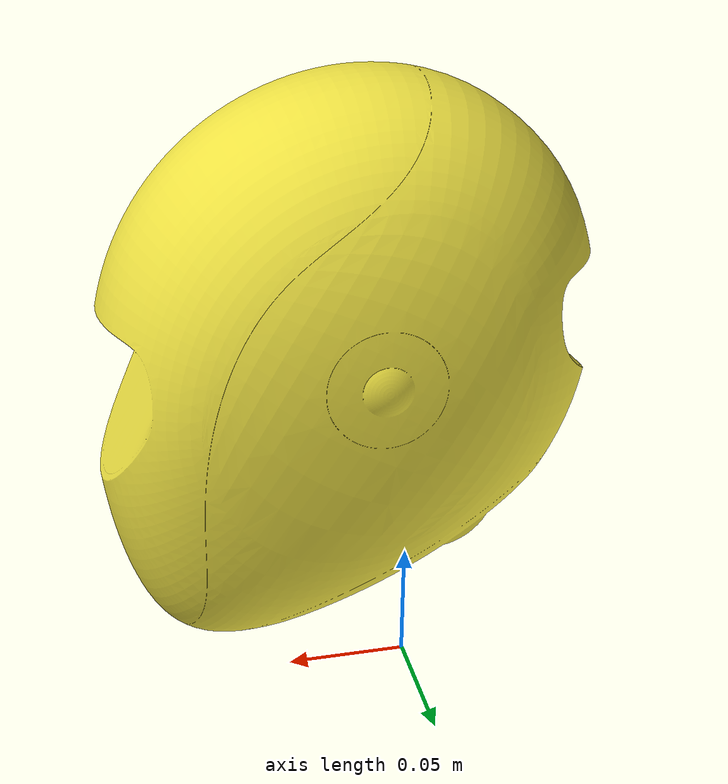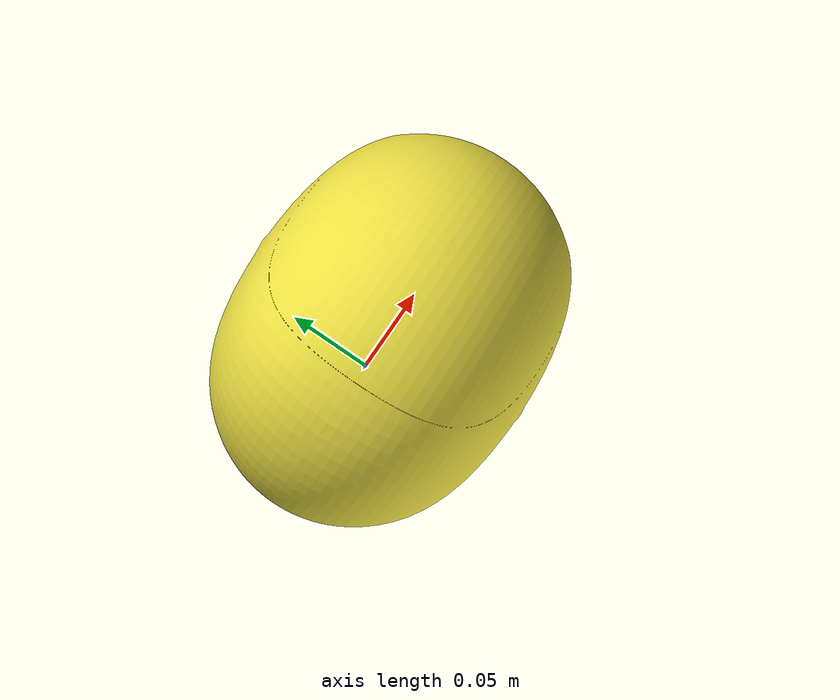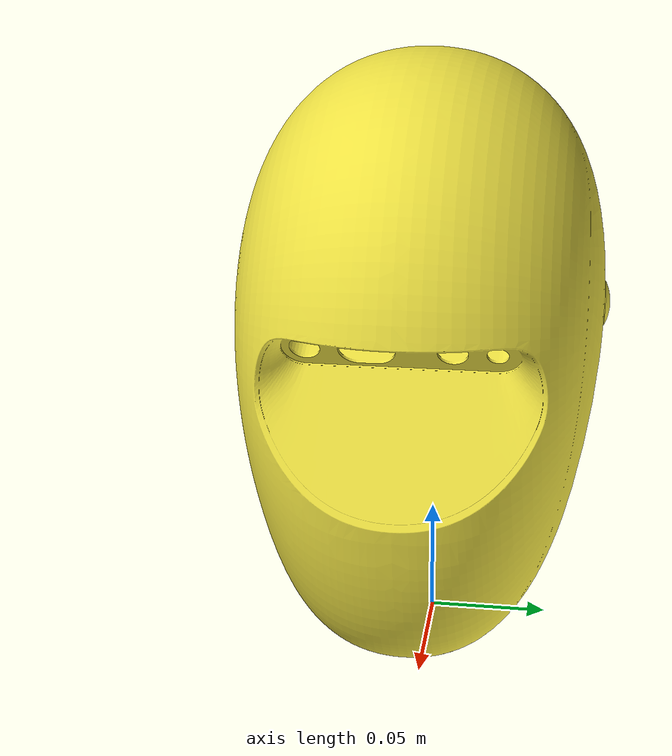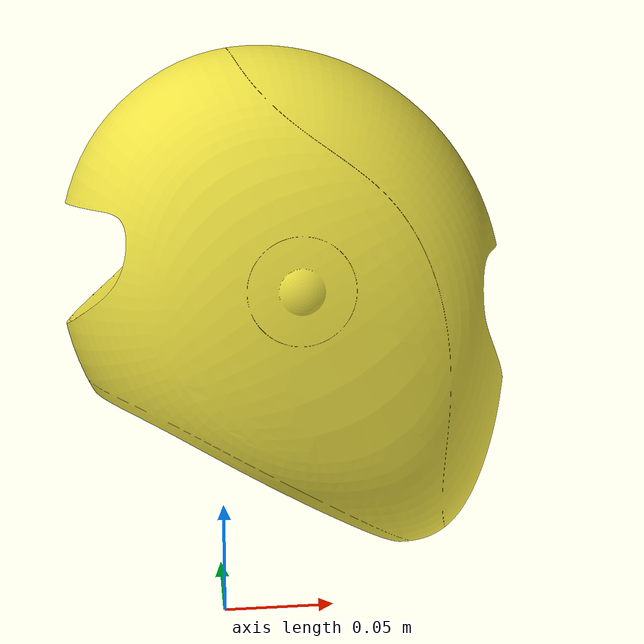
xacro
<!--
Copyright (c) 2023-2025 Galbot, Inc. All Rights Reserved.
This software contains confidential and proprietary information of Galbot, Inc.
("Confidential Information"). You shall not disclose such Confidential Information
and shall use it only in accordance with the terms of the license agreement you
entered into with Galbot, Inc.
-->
<?xml version="1.0"?>
<robot name="head"
    xmlns:xacro="http://ros.org/wiki/xacro">
    <!-- Include-->
    <xacro:include filename="$(find galbot_one_charlie_description)/xacro/head/head.xacro" />
    <!-- Properties -->
    <xacro:property name="M_PI" value="3.1415926535897931" />
    <!-- Parent link -->
    <link name="base_link" />
    <xacro:head parent="base_link" name="head">
        <origin xyz="0 0 0.1" rpy="0 0 0" />
    </xacro:head>
</robot>

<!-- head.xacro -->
<robot xmlns:xacro="http://ros.org/wiki/xacro" name="head">
    <xacro:macro name="head" params="parent *origin name:=head">
        <xacro:property name="M_PI" value="3.1415926535897931" />

        <joint name="${name}_joint" type="fixed">
            <xacro:insert_block name="origin" />
            <parent link="${parent}" />
            <child link="${name}_base_link" />
        </joint>

        <link name="${name}_base_link">
            <inertial>
                <origin xyz="0 0 0" rpy="0 0 0" />
                <mass value="0" />
                <inertia ixx="0" ixy="0" ixz="0" iyy="0" iyz="0" izz="0" />
            </inertial>
        </link>

        <link name="${name}_link1">
            <inertial>
                <origin rpy="0 0 0" xyz="0.00000 0.00004 -0.04238" />
                <mass value="0.41" />
                <inertia ixx="0.00110" ixy="-0.00000" ixz="0.00000" iyy="0.00113" iyz="0.00008"
                    izz="0.00014" />
            </inertial>
        </link>
        <joint name="${name}_joint1" type="revolute">
            <origin xyz="0 0 0" rpy="0 0 0" />
            <parent link="${name}_base_link" />
            <child link="${name}_link1" />
            <axis xyz="0 0 1" />
            <limit lower="-1.570796327" upper="1.570796327" effort="4" velocity="1.5" />

        </joint>
        <link name="${name}_link2">
            <inertial>
                <origin rpy="0 0 0" xyz="0.03200 -0.03753 0.00162" />
                <mass value="0.75" />
                <inertia ixx="0.00380" ixy="-0.00070" ixz="0.00000" iyy="0.00367" iyz="-0.00000"
                    izz="0.00538" />
            </inertial>
            <visual>
                <origin xyz="0 0 0" rpy="0 0 0" />
                <geometry>
                    <mesh
                        filename="package://galbot_one_charlie_description/meshes/head/head_link2.obj" />
                </geometry>

            </visual>
            <collision>
                <origin xyz="0 0 0" rpy="0 0 0" />
                <geometry>
                    <mesh
                        filename="package://galbot_one_charlie_description/meshes/head/head_link2.stl" />
                </geometry>
            </collision>

        </link>
        <joint name="${name}_joint2" type="revolute">
            <origin xyz="0 0 0" rpy="${-M_PI/2} 0 0" />
            <parent link="${name}_link1" />
            <child link="${name}_link2" />
            <axis xyz="0 0 1" />
            <limit lower="-0.366519143" upper="0.366519143" effort="4" velocity="1.5" />
        </joint>

        <link name="${name}_end_effector_mount_link">
            <inertial>
                <origin xyz="0 0 0" rpy="0 0 0" />
                <mass value="0" />
                <inertia ixx="0" ixy="0" ixz="0" iyy="0" iyz="0" izz="0" />
            </inertial>
        </link>
        <joint name="${name}_end_effector_mount_joint" type="fixed">
            <origin xyz="0 0 0" rpy="0 0 0" />
            <parent link="${name}_link2" />
            <child link="${name}_end_effector_mount_link" />
            <axis xyz="0 0 0" />
        </joint>

    </xacro:macro>
</robot>
